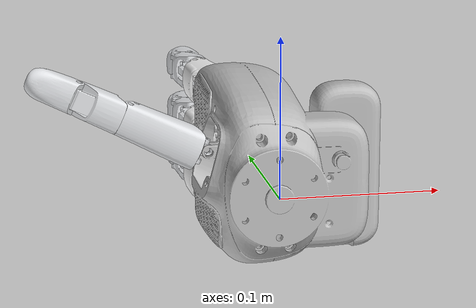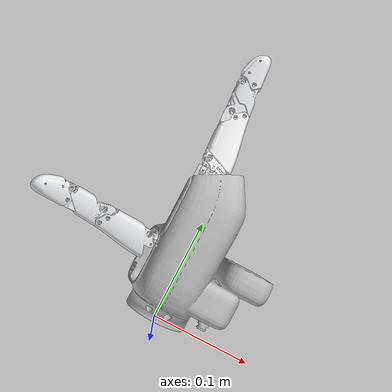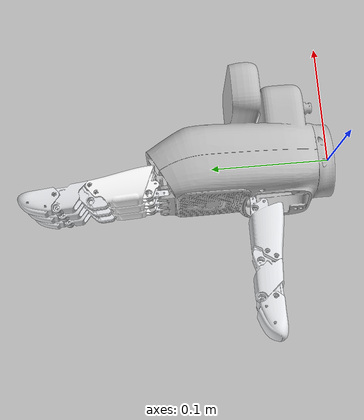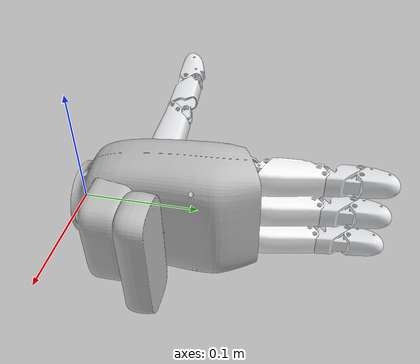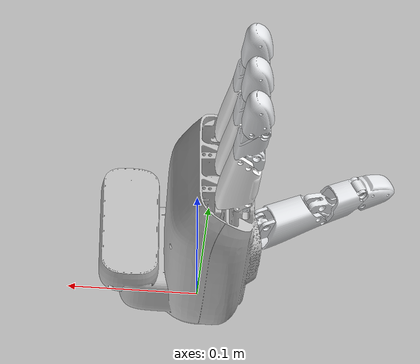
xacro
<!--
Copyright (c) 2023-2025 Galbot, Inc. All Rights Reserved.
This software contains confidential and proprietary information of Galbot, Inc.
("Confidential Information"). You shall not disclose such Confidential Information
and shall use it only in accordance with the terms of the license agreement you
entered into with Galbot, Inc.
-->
<?xml version="1.0"?>

<robot name="test_hand" xmlns:xacro="http://ros.org/wiki/xacro">
    <!-- Include-->
    <xacro:include filename="$(find galbot_one_charlie_description)/xacro/hand/galbot_hand/galbot_right_hand.xacro" />
    <!-- Properties -->
    <xacro:property name="M_PI" value="3.1415926535897931" />
    <!-- Parent link -->
    <link name="base_link" />
    <xacro:galbot_right_hand parent="base_link">
        <origin xyz="0 0 0" rpy="0 0 0" />
    </xacro:galbot_right_hand>
</robot>

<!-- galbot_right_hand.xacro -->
<robot xmlns:xacro="http://www.ros.org/wiki/xacro" name="galbot_right_hand">
  <xacro:macro name="inertial_matrix" params="mass">
    <inertial>
      <mass value="${mass}"/>
      <inertia ixx="1.0" ixy="0.0" ixz="0.0" iyy="0.5" iyz="0.0" izz="1.0"/>
    </inertial>
  </xacro:macro>
  <xacro:macro name="Box_inertial_matrix" params="m l w h">
    <inertial>
      <mass value="${m}"/>
      <inertia ixx="${m*(h*h + l*l)/12}" ixy="0" ixz="0" iyy="${m*(w*w + l*l)/12}" iyz="0" izz="${m*(w*w + h*h)/12}"/>
    </inertial>
  </xacro:macro>

  <xacro:macro name="galbot_right_hand" params="parent *origin name:=galbot_hand">
    <xacro:property name="M_PI" value="3.1415926535897931"/>

    <joint name="${name}_joint" type="fixed">
      <xacro:insert_block name="origin"/>
      <parent link="${parent}"/>
      <child link="${name}_base_link"/>
    </joint>
    <link name="${name}_base_link">
      <inertial>
        <origin xyz="0.0082419 0.068841 0.00013637" rpy="0 0 0"/>
        <mass value="0.25036"/>
        <inertia ixx="0.00045101" ixy="4.3512E-06" ixz="5.459E-07" iyy="0.00028657" iyz="-5.703E-06" izz="0.00021919"/>
      </inertial>
      <visual>
        <origin xyz="0 0 0" rpy="0 0 0"/>
        <geometry>
          <mesh filename="package://galbot_one_charlie_description/meshes/galbot_hand/base_link_right.stl"/>
        </geometry>
        <material name="">
          <color rgba="0.75294 0.75294 0.75294 1"/>
        </material>
      </visual>
      <collision>
        <origin xyz="0 0 0" rpy="0 0 0"/>
        <geometry>
          <mesh filename="package://galbot_one_charlie_description/meshes/galbot_hand/base_link_right.stl"/>
        </geometry>
      </collision>
    </link>
    <link name="${name}_finger1_link1">
      <inertial>
        <origin xyz="0.004995 8.7149E-06 4.5429E-11" rpy="0 0 0"/>
        <mass value="0.00049419"/>
        <inertia ixx="5.3424E-09" ixy="1.1328E-14" ixz="6.9289E-16" iyy="1.3374E-08" iyz="-8.1629E-16" izz="1.5765E-08"/>
      </inertial>
      <visual>
        <origin xyz="0 0 0" rpy="0 0 0"/>
        <geometry>
          <mesh filename="package://galbot_one_charlie_description/meshes/galbot_hand/right_finger1_link1.stl"/>
        </geometry>
        <material name="">
          <color rgba="0.89804 0.90588 0.91765 1"/>
        </material>
      </visual>
      <collision>
        <origin xyz="0 0 0" rpy="0 0 0"/>
        <geometry>
          <mesh filename="package://galbot_one_charlie_description/meshes/galbot_hand/right_finger1_link1.stl"/>
        </geometry>
      </collision>
    </link>
    <joint name="${name}_finger1_joint1" type="revolute">
      <origin xyz="-0.03285 0.069 0.01381" rpy="-1.5708 -0.43633 -3.1416"/>
      <parent link="${name}_base_link"/>
      <child link="${name}_finger1_link1"/>
      <axis xyz="0 0 1"/>
      <limit lower="-0.436333" upper="0.436333" effort="10" velocity="1.5"/>
    </joint>
    <link name="${name}_finger1_link2">
      <inertial>
        <origin xyz="-0.0197638113646088 0.0119884351204036 -6.47583720675415E-08" rpy="0 0 0"/>
        <mass value="0.0104414084749297"/>
        <inertia ixx="2.26938971460816E-06" ixy="6.95671895082844E-07" ixz="5.17563439827828E-12" iyy="1.95674475637677E-06" iyz="-1.8146676089102E-11" izz="2.64036940238189E-06"/>
      </inertial>
      <visual>
        <origin xyz="0 0 0" rpy="0 0 0"/>
        <geometry>
          <mesh filename="package://galbot_one_charlie_description/meshes/galbot_hand/right_finger1_link2.stl"/>
        </geometry>
        <material name="">
          <color rgba="0.898039215686275 0.905882352941176 0.917647058823529 1"/>
        </material>
      </visual>
      <collision>
        <origin xyz="0 0 0" rpy="0 0 0"/>
        <geometry>
          <mesh filename="package://galbot_one_charlie_description/meshes/galbot_hand/right_finger1_link2.stl"/>
        </geometry>
      </collision>
    </link>
    <joint name="${name}_finger1_joint2" type="revolute">
      <origin xyz="0.011996 0 0" rpy="-1.5708 0.86998 -3.1416"/>
      <parent link="${name}_finger1_link1"/>
      <child link="${name}_finger1_link2"/>
      <axis xyz="0 0 -1"/>
      <limit lower="0" upper="1.50551734" effort="10" velocity="1.5"/>
    </joint>
    <link name="${name}_finger1_link3">
      <inertial>
        <origin xyz="0.0120682555874391 0.0157241622001568 -1.02067244663051E-07" rpy="0 0 0"/>
        <mass value="0.0076968888894129"/>
        <inertia ixx="1.1726091868184E-06" ixy="-4.07923072902364E-07" ixz="-5.24185280531264E-12" iyy="8.88278793376918E-07" iyz="6.13497236919717E-12" izz="1.48324986772178E-06"/>
      </inertial>
      <visual>
        <origin xyz="0 0 0" rpy="0 0 0"/>
        <geometry>
          <mesh filename="package://galbot_one_charlie_description/meshes/galbot_hand/right_finger1_link3.stl"/>
        </geometry>
        <material name="">
          <color rgba="0.898039215686275 0.905882352941176 0.917647058823529 1"/>
        </material>
      </visual>
      <collision>
        <origin xyz="0 0 0" rpy="0 0 0"/>
        <geometry>
          <mesh filename="package://galbot_one_charlie_description/meshes/galbot_hand/right_finger1_link3.stl"/>
        </geometry>
      </collision>
    </link>
    <joint name="${name}_finger1_joint3" type="revolute">
      <origin xyz="-0.03095 0.030567 0" rpy="-3.1416 0 -3.0848"/>
      <parent link="${name}_finger1_link2"/>
      <child link="${name}_finger1_link3"/>
      <axis xyz="0 0 1"/>
      <limit lower="0" upper="1.23805297" effort="10" velocity="1.5"/>
    </joint>
    <link name="${name}_finger1_link4">
      <inertial>
        <origin xyz="0.0137393508215277 0.00523874565059427 1.47490922253191E-10" rpy="0 0 0"/>
        <mass value="0.00601167993964778"/>
        <inertia ixx="3.64167528790483E-07" ixy="9.03019810969208E-08" ixz="6.29210447472367E-12" iyy="6.52661994490432E-07" iyz="-3.46109520069899E-12" izz="5.53534912148834E-07"/>
      </inertial>
      <visual>
        <origin xyz="0 0 0" rpy="0 0 0"/>
        <geometry>
          <mesh filename="package://galbot_one_charlie_description/meshes/galbot_hand/right_finger1_link4.stl"/>
        </geometry>
        <material name="">
          <color rgba="0.898039215686275 0.905882352941176 0.917647058823529 1"/>
        </material>
      </visual>
      <collision>
        <origin xyz="0 0 0" rpy="0 0 0"/>
        <geometry>
          <mesh filename="package://galbot_one_charlie_description/meshes/galbot_hand/right_finger1_link4.stl"/>
        </geometry>
      </collision>
    </link>
    <joint name="${name}_finger1_joint4" type="revolute">
      <origin xyz="0.024254 0.030534 0" rpy="0 0 0.82545"/>
      <parent link="${name}_finger1_link3"/>
      <child link="${name}_finger1_link4"/>
      <axis xyz="0 0 1"/>
      <limit lower="0" upper="1.07637884" effort="10" velocity="1.5"/>
    </joint>
    <link name="${name}_finger1_end_effector_link">
    </link>
    <joint name="${name}_finger1_end_effector_joint" type="fixed">
      <origin xyz="0.021345 0.006117 0" rpy="0 0 0"/>
      <parent link="${name}_finger1_link4"/>
      <child link="${name}_finger1_end_effector_link"/>
      <axis xyz="0 0 0"/>
    </joint>
    <link name="${name}_finger2_link1">
      <inertial>
        <origin xyz="0.00499906779370619 2.5219036303703E-09 -7.00310144943761E-10" rpy="0 0 0"/>
        <mass value="0.000494192567929614"/>
        <inertia ixx="5.3423985521446E-09" ixy="3.90839790222105E-15" ixz="-1.22441161173858E-15" iyy="1.33735101332351E-08" iyz="-1.15373303038692E-16" izz="1.57645319003349E-08"/>
      </inertial>
      <visual>
        <origin xyz="0 0 0" rpy="0 0 0"/>
        <geometry>
          <mesh filename="package://galbot_one_charlie_description/meshes/galbot_hand/right_finger2_link1.stl"/>
        </geometry>
        <material name="">
          <color rgba="0.898039215686275 0.905882352941176 0.917647058823529 1"/>
        </material>
      </visual>
      <collision>
        <origin xyz="0 0 0" rpy="0 0 0"/>
        <geometry>
          <mesh filename="package://galbot_one_charlie_description/meshes/galbot_hand/right_finger2_link1.stl"/>
        </geometry>
      </collision>
    </link>
    <joint name="${name}_finger2_joint1" type="revolute">
      <origin xyz="-0.02385 0.142 0.0338" rpy="1.5708 0 1.5708"/>
      <parent link="${name}_base_link"/>
      <child link="${name}_finger2_link1"/>
      <axis xyz="0 0 1"/>
      <limit lower="-0.436333" upper="0.436333" effort="10" velocity="1.5"/>
    </joint>
    <link name="${name}_finger2_link2">
      <inertial>
        <origin xyz="-0.0186381023362613 0.0107405395766148 6.64738062650105E-08" rpy="0 0 0"/>
        <mass value="0.0111711924506811"/>
        <inertia ixx="2.33104107461343E-06" ixy="6.93393463927505E-07" ixz="-4.90461334694945E-13" iyy="1.95500143647408E-06" iyz="7.77559373929327E-12" izz="2.63422452401262E-06"/>
      </inertial>
      <visual>
        <origin xyz="0 0 0" rpy="0 0 0"/>
        <geometry>
          <mesh filename="package://galbot_one_charlie_description/meshes/galbot_hand/right_finger2_link2.stl"/>
        </geometry>
        <material name="">
          <color rgba="1 1 1 1"/>
        </material>
      </visual>
      <collision>
        <origin xyz="0 0 0" rpy="0 0 0"/>
        <geometry>
          <mesh filename="package://galbot_one_charlie_description/meshes/galbot_hand/right_finger2_link2.stl"/>
        </geometry>
      </collision>
    </link>
    <joint name="${name}_finger2_joint2" type="revolute">
      <origin xyz="0.012 0 0" rpy="-1.5708 0.86998 -3.1416"/>
      <parent link="${name}_finger2_link1"/>
      <child link="${name}_finger2_link2"/>
      <axis xyz="0 0 -1"/>
      <limit lower="0" upper="1.45958033" effort="10" velocity="1.5"/>
    </joint>
    <link name="${name}_finger2_link3">
      <inertial>
        <origin xyz="0.00934475037345902 0.0128197232965583 1.59461179816134E-08" rpy="0 0 0"/>
        <mass value="0.00617814830189644"/>
        <inertia ixx="7.5787317806045E-07" ixy="-2.62117034401506E-07" ixz="9.53124838087193E-13" iyy="6.81948958018871E-07" iyz="-9.09691463190549E-13" izz="1.02516471185422E-06"/>
      </inertial>
      <visual>
        <origin xyz="0 0 0" rpy="0 0 0"/>
        <geometry>
          <mesh filename="package://galbot_one_charlie_description/meshes/galbot_hand/right_finger2_link3.stl"/>
        </geometry>
        <material name="">
          <color rgba="0.898039215686275 0.905882352941176 0.917647058823529 1"/>
        </material>
      </visual>
      <collision>
        <origin xyz="0 0 0" rpy="0 0 0"/>
        <geometry>
          <mesh filename="package://galbot_one_charlie_description/meshes/galbot_hand/right_finger2_link3.stl"/>
        </geometry>
      </collision>
    </link>
    <joint name="${name}_finger2_joint3" type="revolute">
      <origin xyz="-0.029716 0.029398 0" rpy="3.1416 0 -3.0848"/>
      <parent link="${name}_finger2_link2"/>
      <child link="${name}_finger2_link3"/>
      <axis xyz="0 0 1"/>
      <limit lower="0" upper="1.42521995" effort="10" velocity="1.5"/>
    </joint>
    <link name="${name}_finger2_link4">
      <inertial>
        <origin xyz="0.0135273213448935 0.00576298251975127 3.83376195373097E-08" rpy="0 0 0"/>
        <mass value="0.00601173996414688"/>
        <inertia ixx="3.57653695977892E-07" ixy="7.89550155623852E-08" ixz="2.61262934762474E-11" iyy="6.59158954124062E-07" iyz="1.69010425734659E-11" izz="5.5351301755672E-07"/>
      </inertial>
      <visual>
        <origin xyz="0 0 0" rpy="0 0 0"/>
        <geometry>
          <mesh filename="package://galbot_one_charlie_description/meshes/galbot_hand/right_finger2_link4.stl"/>
        </geometry>
        <material name="">
          <color rgba="0.898039215686275 0.905882352941176 0.917647058823529 1"/>
        </material>
      </visual>
      <collision>
        <origin xyz="0 0 0" rpy="0 0 0"/>
        <geometry>
          <mesh filename="package://galbot_one_charlie_description/meshes/galbot_hand/right_finger2_link4.stl"/>
        </geometry>
      </collision>
    </link>
    <joint name="${name}_finger2_joint4" type="revolute">
      <origin xyz="0.02113 0.025978 0" rpy="0 0 0.82545"/>
      <parent link="${name}_finger2_link3"/>
      <child link="${name}_finger2_link4"/>
      <axis xyz="0 0 1"/>
      <limit lower="0" upper="1.33165452" effort="10" velocity="1.5"/>
    </joint>
    <link name="${name}_finger2_end_effector_link">
    </link>
    <joint name="${name}_finger2_end_effector_joint" type="fixed">
      <origin xyz="0.021094 0.0069335 0" rpy="0 0 0"/>
      <parent link="${name}_finger2_link4"/>
      <child link="${name}_finger2_end_effector_link"/>
      <axis xyz="0 0 0"/>
    </joint>
    <link name="${name}_finger3_link1">
      <inertial>
        <origin xyz="0.00499906779370636 2.52190364424809E-09 -4.84088828051066E-10" rpy="0 0 0"/>
        <mass value="0.000494192567929613"/>
        <inertia ixx="5.34239855214459E-09" ixy="3.90839791102644E-15" ixz="-1.22441158178898E-15" iyy="1.33735101332351E-08" iyz="-1.30668855776301E-16" izz="1.57645319003348E-08"/>
      </inertial>
      <visual>
        <origin xyz="0 0 0" rpy="0 0 0"/>
        <geometry>
          <mesh filename="package://galbot_one_charlie_description/meshes/galbot_hand/right_finger3_link1.stl"/>
        </geometry>
        <material name="">
          <color rgba="0.898039215686275 0.905882352941176 0.917647058823529 1"/>
        </material>
      </visual>
      <collision>
        <origin xyz="0 0 0" rpy="0 0 0"/>
        <geometry>
          <mesh filename="package://galbot_one_charlie_description/meshes/galbot_hand/right_finger3_link1.stl"/>
        </geometry>
      </collision>
    </link>
    <joint name="${name}_finger3_joint1" type="revolute">
      <origin xyz="-0.02385 0.142 0" rpy="1.5708 0 1.5708"/>
      <parent link="${name}_base_link"/>
      <child link="${name}_finger3_link1"/>
      <axis xyz="0 0 1"/>
      <limit lower="-0.436333" upper="0.436333" effort="10" velocity="1.5"/>
    </joint>
    <link name="${name}_finger3_link2">
      <inertial>
        <origin xyz="-0.0186381022533214 0.0107405395416611 6.64936977007313E-08" rpy="0 0 0"/>
        <mass value="0.0111711924112354"/>
        <inertia ixx="2.33104106570944E-06" ixy="6.93393454784971E-07" ixz="-4.87179070675973E-13" iyy="1.95500142193922E-06" iyz="7.77328100470882E-12" izz="2.6342245047578E-06"/>
      </inertial>
      <visual>
        <origin xyz="0 0 0" rpy="0 0 0"/>
        <geometry>
          <mesh filename="package://galbot_one_charlie_description/meshes/galbot_hand/right_finger3_link2.stl"/>
        </geometry>
        <material name="">
          <color rgba="1 1 1 1"/>
        </material>
      </visual>
      <collision>
        <origin xyz="0 0 0" rpy="0 0 0"/>
        <geometry>
          <mesh filename="package://galbot_one_charlie_description/meshes/galbot_hand/right_finger3_link2.stl"/>
        </geometry>
      </collision>
    </link>
    <joint name="${name}_finger3_joint2" type="revolute">
      <origin xyz="0.012 0 0" rpy="-1.5708 0.86998 3.1416"/>
      <parent link="${name}_finger3_link1"/>
      <child link="${name}_finger3_link2"/>
      <axis xyz="0 0 -1"/>
      <limit lower="0" upper="1.45958033" effort="10" velocity="1.5"/>
    </joint>
    <link name="${name}_finger3_link3">
      <inertial>
        <origin xyz="0.00934475050211912 0.0128197229918609 1.56828517672292E-08" rpy="0 0 0"/>
        <mass value="0.00617814852272355"/>
        <inertia ixx="7.57873218145058E-07" ixy="-2.6211703055126E-07" ixz="9.55815251850356E-13" iyy="6.81948971045792E-07" iyz="-9.28567749822938E-13" izz="1.02516474015376E-06"/>
      </inertial>
      <visual>
        <origin xyz="0 0 0" rpy="0 0 0"/>
        <geometry>
          <mesh filename="package://galbot_one_charlie_description/meshes/galbot_hand/right_finger3_link3.stl"/>
        </geometry>
        <material name="">
          <color rgba="0.898039215686275 0.905882352941176 0.917647058823529 1"/>
        </material>
      </visual>
      <collision>
        <origin xyz="0 0 0" rpy="0 0 0"/>
        <geometry>
          <mesh filename="package://galbot_one_charlie_description/meshes/galbot_hand/right_finger3_link3.stl"/>
        </geometry>
      </collision>
    </link>
    <joint name="${name}_finger3_joint3" type="revolute">
      <origin xyz="-0.029716 0.029398 0" rpy="3.1416 0 -3.0848"/>
      <parent link="${name}_finger3_link2"/>
      <child link="${name}_finger3_link3"/>
      <axis xyz="0 0 1"/>
      <limit lower="0" upper="1.42521995" effort="10" velocity="1.5"/>
    </joint>
    <link name="${name}_finger3_link4">
      <inertial>
        <origin xyz="0.0135273213448937 0.00576298251975123 3.83376195928209E-08" rpy="0 0 0"/>
        <mass value="0.00601173996414699"/>
        <inertia ixx="3.57653695977897E-07" ixy="7.89550155623841E-08" ixz="2.61262934701131E-11" iyy="6.5915895412408E-07" iyz="1.69010425719313E-11" izz="5.53513017556735E-07"/>
      </inertial>
      <visual>
        <origin xyz="0 0 0" rpy="0 0 0"/>
        <geometry>
          <mesh filename="package://galbot_one_charlie_description/meshes/galbot_hand/right_finger3_link4.stl"/>
        </geometry>
        <material name="">
          <color rgba="0.898039215686275 0.905882352941176 0.917647058823529 1"/>
        </material>
      </visual>
      <collision>
        <origin xyz="0 0 0" rpy="0 0 0"/>
        <geometry>
          <mesh filename="package://galbot_one_charlie_description/meshes/galbot_hand/right_finger3_link4.stl"/>
        </geometry>
      </collision>
    </link>
    <joint name="${name}_finger3_joint4" type="revolute">
      <origin xyz="0.02113 0.025978 0" rpy="0 0 0.82545"/>
      <parent link="${name}_finger3_link3"/>
      <child link="${name}_finger3_link4"/>
      <axis xyz="0 0 1"/>
      <limit lower="0" upper="1.33165452" effort="10" velocity="1.5"/>
    </joint>
    <link name="${name}_finger3_end_effector_link">
    </link>
    <joint name="${name}_finger3_end_effector_joint" type="fixed">
      <origin xyz="0.021094 0.0069335 0" rpy="0 0 0"/>
      <parent link="${name}_finger3_link4"/>
      <child link="${name}_finger3_end_effector_link"/>
      <axis xyz="0 0 0"/>
    </joint>
    <link name="${name}_finger4_link1">
      <inertial>
        <origin xyz="0.00499906779370652 2.52190364037596E-09 -2.67867525036158E-10" rpy="0 0 0"/>
        <mass value="0.000494192567929613"/>
        <inertia ixx="5.34239855214459E-09" ixy="3.90839790739408E-15" ixz="-1.22441158556461E-15" iyy="1.33735101332351E-08" iyz="-1.3066885578012E-16" izz="1.57645319003349E-08"/>
      </inertial>
      <visual>
        <origin xyz="0 0 0" rpy="0 0 0"/>
        <geometry>
          <mesh filename="package://galbot_one_charlie_description/meshes/galbot_hand/right_finger4_link1.stl"/>
        </geometry>
        <material name="">
          <color rgba="0.898039215686275 0.905882352941176 0.917647058823529 1"/>
        </material>
      </visual>
      <collision>
        <origin xyz="0 0 0" rpy="0 0 0"/>
        <geometry>
          <mesh filename="package://galbot_one_charlie_description/meshes/galbot_hand/right_finger4_link1.stl"/>
        </geometry>
      </collision>
    </link>
    <joint name="${name}_finger4_joint1" type="revolute">
      <origin xyz="-0.02385 0.142 -0.0338" rpy="1.5708 0 1.5708"/>
      <parent link="${name}_base_link"/>
      <child link="${name}_finger4_link1"/>
      <axis xyz="0 0 1"/>
      <limit lower="-0.436333" upper="0.436333" effort="10" velocity="1.5"/>
    </joint>
    <link name="${name}_finger4_link2">
      <inertial>
        <origin xyz="-0.0186381023945565 0.0107405396320499 6.65026438790444E-08" rpy="0 0 0"/>
        <mass value="0.0111711925002666"/>
        <inertia ixx="2.33104108365488E-06" ixy="6.93393473554513E-07" ixz="-4.84880935846891E-13" iyy="1.95500145355396E-06" iyz="7.77151003070869E-12" izz="2.63422454490073E-06"/>
      </inertial>
      <visual>
        <origin xyz="0 0 0" rpy="0 0 0"/>
        <geometry>
          <mesh filename="package://galbot_one_charlie_description/meshes/galbot_hand/right_finger4_link2.stl"/>
        </geometry>
        <material name="">
          <color rgba="1 1 1 1"/>
        </material>
      </visual>
      <collision>
        <origin xyz="0 0 0" rpy="0 0 0"/>
        <geometry>
          <mesh filename="package://galbot_one_charlie_description/meshes/galbot_hand/right_finger4_link2.stl"/>
        </geometry>
      </collision>
    </link>
    <joint name="${name}_finger4_joint2" type="revolute">
      <origin xyz="0.012 0 0" rpy="-1.5708 0.86998 3.1416"/>
      <parent link="${name}_finger4_link1"/>
      <child link="${name}_finger4_link2"/>
      <axis xyz="0 0 -1"/>
      <limit lower="0" upper="1.45958033" effort="10" velocity="1.5"/>
    </joint>
    <link name="${name}_finger4_link3">
      <inertial>
        <origin xyz="0.00934475055570621 0.0128197228855712 1.56005088472244E-08" rpy="0 0 0"/>
        <mass value="0.0061781485921843"/>
        <inertia ixx="7.57873231944316E-07" ixy="-2.62117028420887E-07" ixz="9.57458681628821E-13" iyy="6.81948975016763E-07" iyz="-9.35106111107108E-13" izz="1.02516475055295E-06"/>
      </inertial>
      <visual>
        <origin xyz="0 0 0" rpy="0 0 0"/>
        <geometry>
          <mesh filename="package://galbot_one_charlie_description/meshes/galbot_hand/right_finger4_link3.stl"/>
        </geometry>
        <material name="">
          <color rgba="0.898039215686275 0.905882352941176 0.917647058823529 1"/>
        </material>
      </visual>
      <collision>
        <origin xyz="0 0 0" rpy="0 0 0"/>
        <geometry>
          <mesh filename="package://galbot_one_charlie_description/meshes/galbot_hand/right_finger4_link3.stl"/>
        </geometry>
      </collision>
    </link>
    <joint name="${name}_finger4_joint3" type="revolute">
      <origin xyz="-0.029716 0.029398 0" rpy="3.1416 0 -3.0848"/>
      <parent link="${name}_finger4_link2"/>
      <child link="${name}_finger4_link3"/>
      <axis xyz="0 0 1"/>
      <limit lower="0" upper="1.42521995" effort="10" velocity="1.5"/>
    </joint>
    <link name="${name}_finger4_link4">
      <inertial>
        <origin xyz="0.0135273160506967 0.00576299030052829 3.29077335614241E-08" rpy="0 0 0"/>
        <mass value="0.00601173271035026"/>
        <inertia ixx="3.57653416751521E-07" ixy="7.89548294632823E-08" ixz="2.63407714013318E-11" iyy="6.59158506333225E-07" iyz="1.67605116711692E-11" izz="5.53512603794628E-07"/>
      </inertial>
      <visual>
        <origin xyz="0 0 0" rpy="0 0 0"/>
        <geometry>
          <mesh filename="package://galbot_one_charlie_description/meshes/galbot_hand/right_finger4_link4.stl"/>
        </geometry>
        <material name="">
          <color rgba="0.898039215686275 0.905882352941176 0.917647058823529 1"/>
        </material>
      </visual>
      <collision>
        <origin xyz="0 0 0" rpy="0 0 0"/>
        <geometry>
          <mesh filename="package://galbot_one_charlie_description/meshes/galbot_hand/right_finger4_link4.stl"/>
        </geometry>
      </collision>
    </link>
    <joint name="${name}_finger4_joint4" type="revolute">
      <origin xyz="0.02113 0.025978 0" rpy="0 0 0.82545"/>
      <parent link="${name}_finger4_link3"/>
      <child link="${name}_finger4_link4"/>
      <axis xyz="0 0 1"/>
      <limit lower="0" upper="1.33165452" effort="10" velocity="1.5"/>
    </joint>
    <link name="${name}_finger4_end_effector_link">
    </link>
    <joint name="${name}_finger4_end_effector_joint" type="fixed">
      <origin xyz="0.021094 0.0069335 0" rpy="0 0 0"/>
      <parent link="${name}_finger4_link4"/>
      <child link="${name}_finger4_end_effector_link"/>
      <axis xyz="0 0 0"/>
    </joint>
  </xacro:macro>
</robot>
